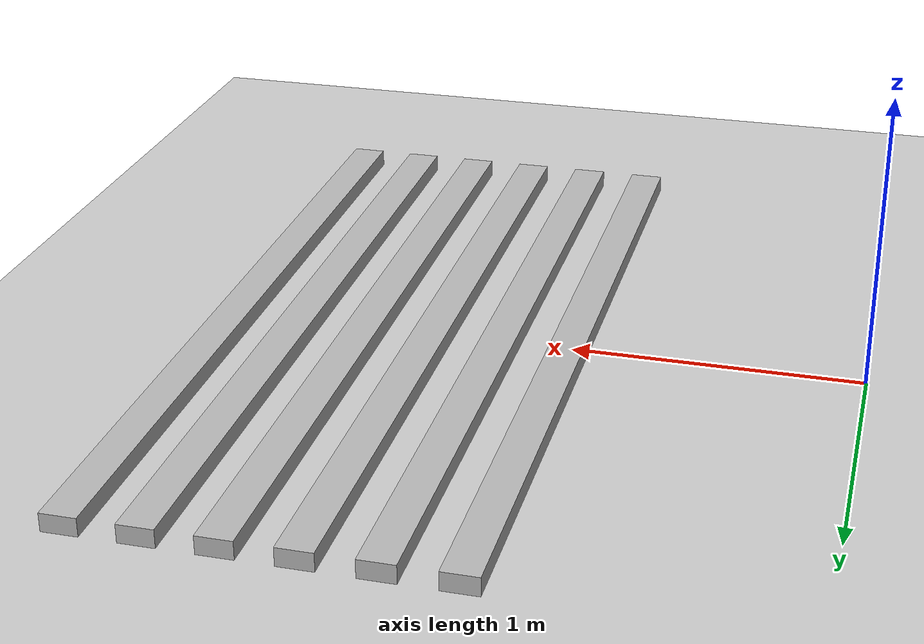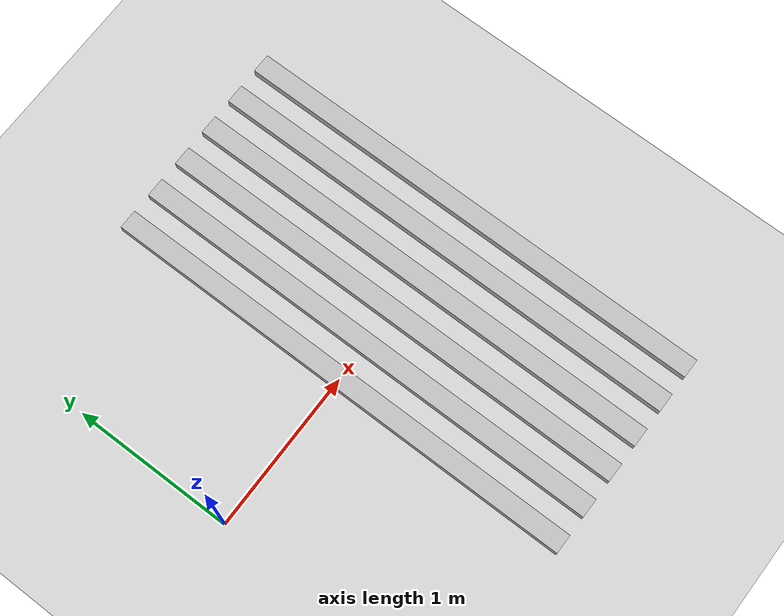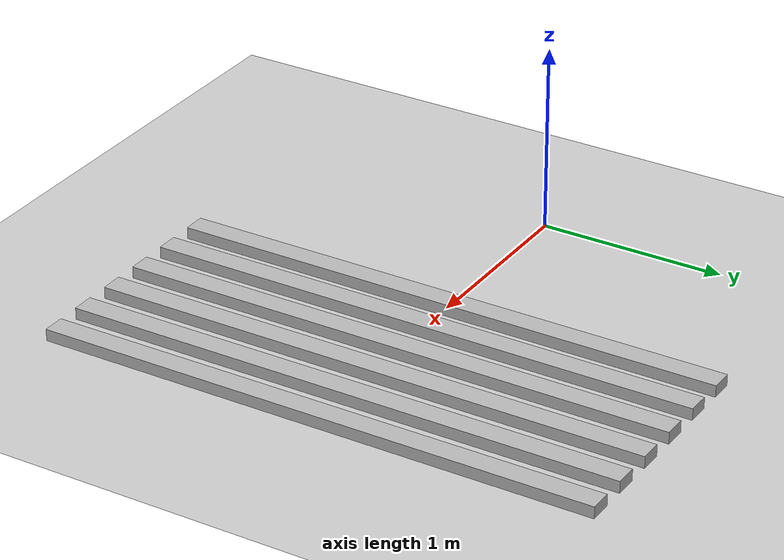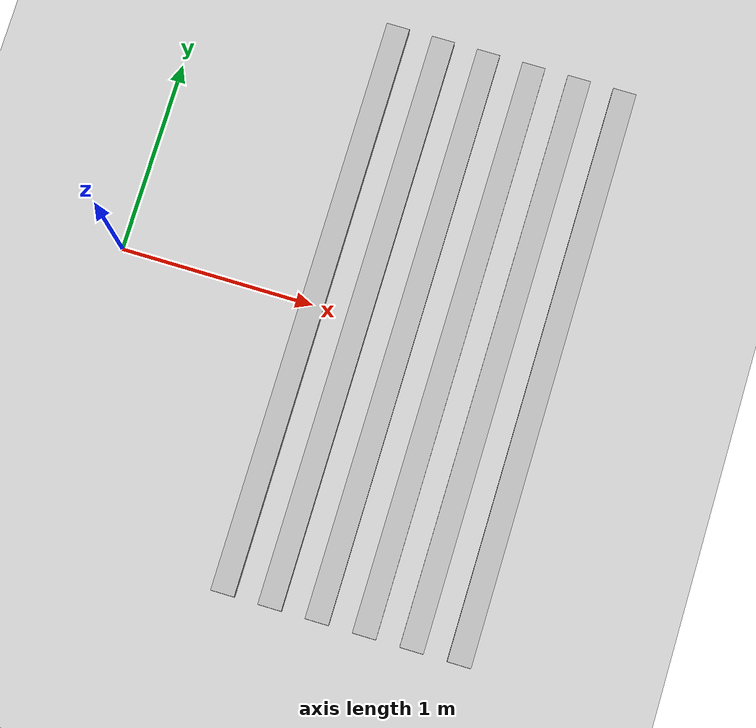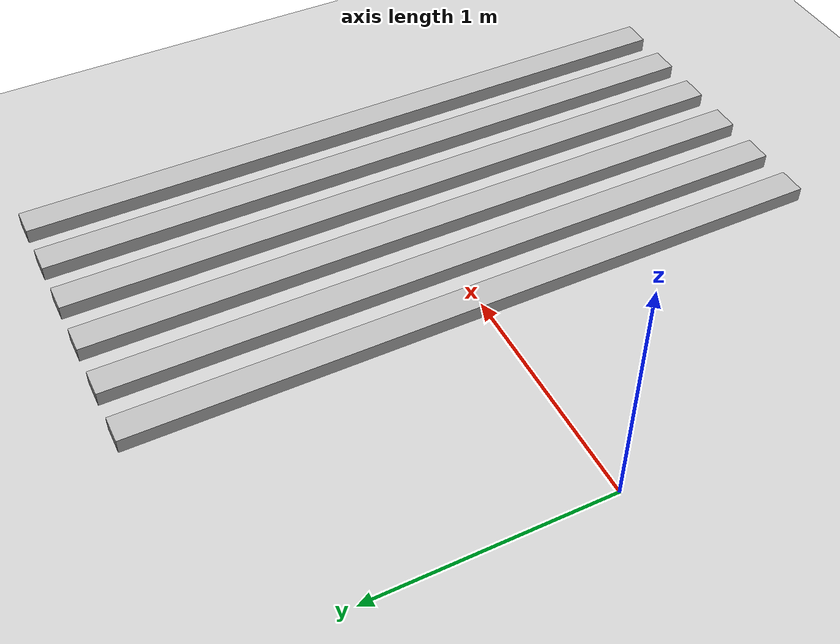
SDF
<?xml version="1.0" ?>
<sdf version="1.4">
  <world name="default">
    <include>
      <uri>model://ground_plane</uri>
    </include>
    <include>
      <uri>model://sun</uri>
    </include>
    <include>
      <uri>model://gazebo_worlds/models/pallet</uri>
      <pose>0 0 0 0 0 0</pose>
      <static>true</static>
    </include>

    <physics type="ode">
      <gravity>0 0 -9.81</gravity>
    </physics>
  </world>
</sdf>

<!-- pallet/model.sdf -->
<sdf version='1.4'>
  <model name="pallet">
    <static>true</static>
    <pose>0 0 0.07 0 0 0</pose>

    <link name='stairs1'>
      <pose>1.0 0 0.0 0 0 0</pose>

      <collision name='collision'>
        <geometry>
          <box>
            <size>0.12 3.0 0.12</size>
          </box>
        </geometry>
      </collision>

      <visual name='visual'>
        <geometry>
          <box>
            <size>0.12 3.0 0.12</size>
          </box>
        </geometry>
      </visual>
    </link>

    <link name='stairs2'>
      <pose>1.24 0 0 0 0 0</pose>

      <collision name='collision'>
        <geometry>
          <box>
            <size>0.12 3.0 0.12</size>
          </box>
        </geometry>
      </collision>

      <visual name='visual'>
        <geometry>
          <box>
            <size>0.12 3.0 0.12</size>
          </box>
        </geometry>
      </visual>
    </link>

    <link name='stairs3'>
      <pose>1.48 0 0 0 0 0</pose>

      <collision name='collision'>
        <geometry>
          <box>
            <size>0.12 3.0 0.12</size>
          </box>
        </geometry>
      </collision>

      <visual name='visual'>
        <geometry>
          <box>
            <size>0.12 3.0 0.12</size>
          </box>
        </geometry>
      </visual>
    </link>

    <link name='stairs4'>
      <pose>1.72 0 0 0 0 0</pose>

      <collision name='collision'>
        <geometry>
          <box>
            <size>0.12 3.0 0.12</size>
          </box>
        </geometry>
      </collision>

      <visual name='visual'>
        <geometry>
          <box>
            <size>0.12 3.0 0.12</size>
          </box>
        </geometry>
      </visual>
    </link>

    <link name='stairs5'>
      <pose>1.96 0 0 0 0 0</pose>

      <collision name='collision'>
        <geometry>
          <box>
            <size>0.12 3.0 0.12</size>
          </box>
        </geometry>
      </collision>

      <visual name='visual'>
        <geometry>
          <box>
            <size>0.12 3.0 0.12</size>
          </box>
        </geometry>
      </visual>
    </link>

    <link name='stairs6'>
      <pose>2.20 0 0 0 0 0</pose>

      <collision name='collision'>
        <geometry>
          <box>
            <size>0.12 3.0 0.12</size>
          </box>
        </geometry>
      </collision>

      <visual name='visual'>
        <geometry>
          <box>
            <size>0.12 3.0 0.12</size>
          </box>
        </geometry>
      </visual>
    </link>

  </model>
</sdf>
